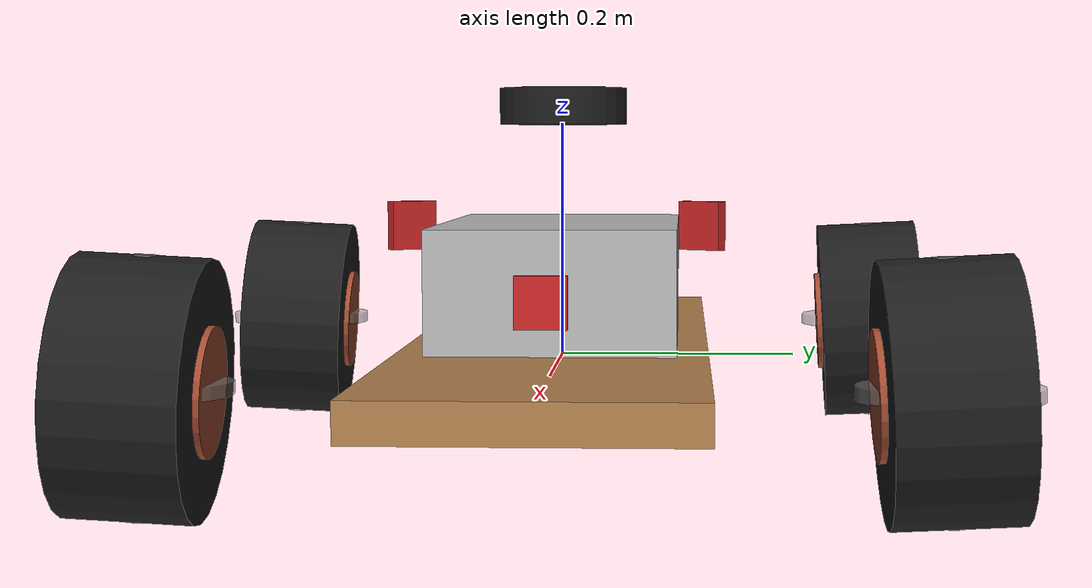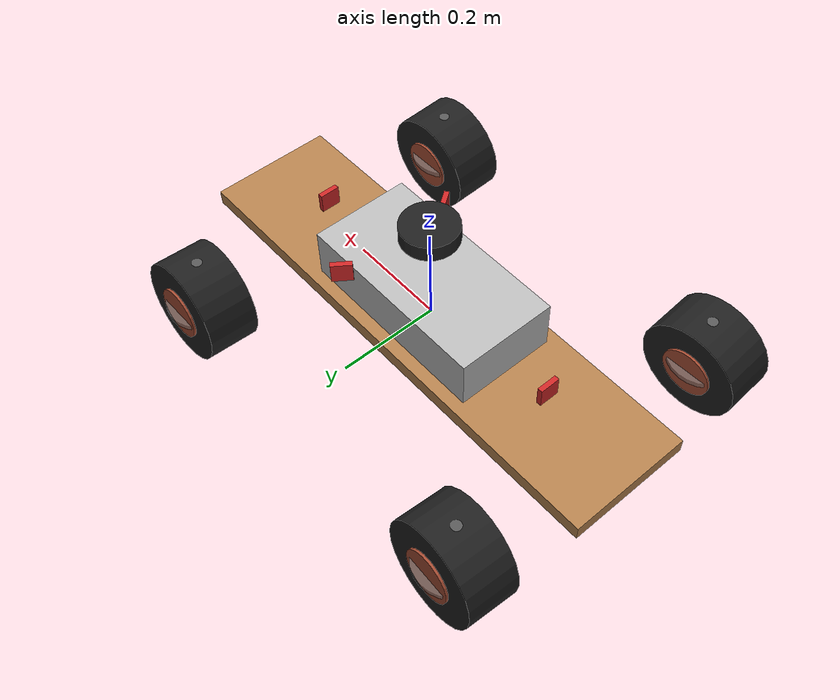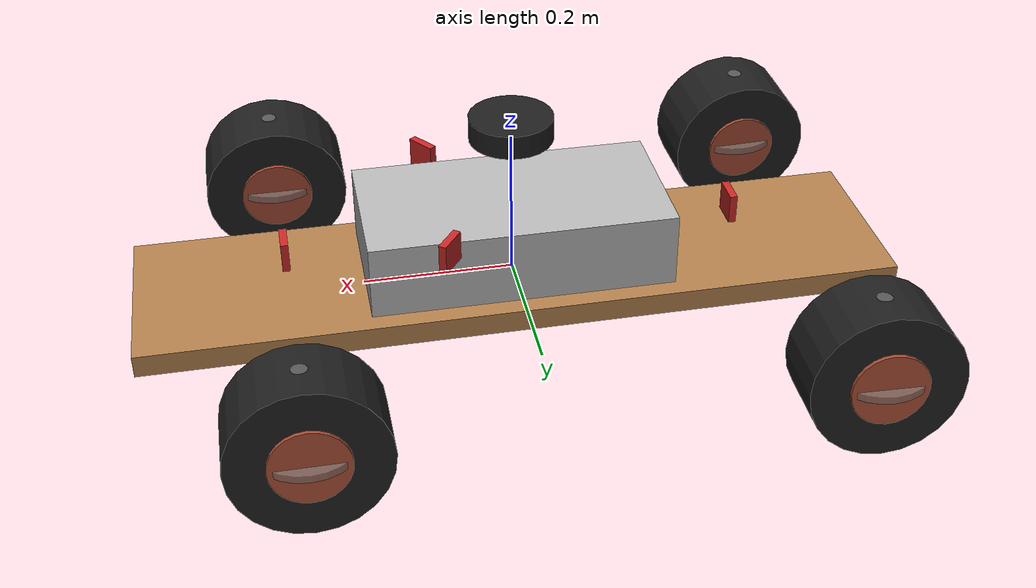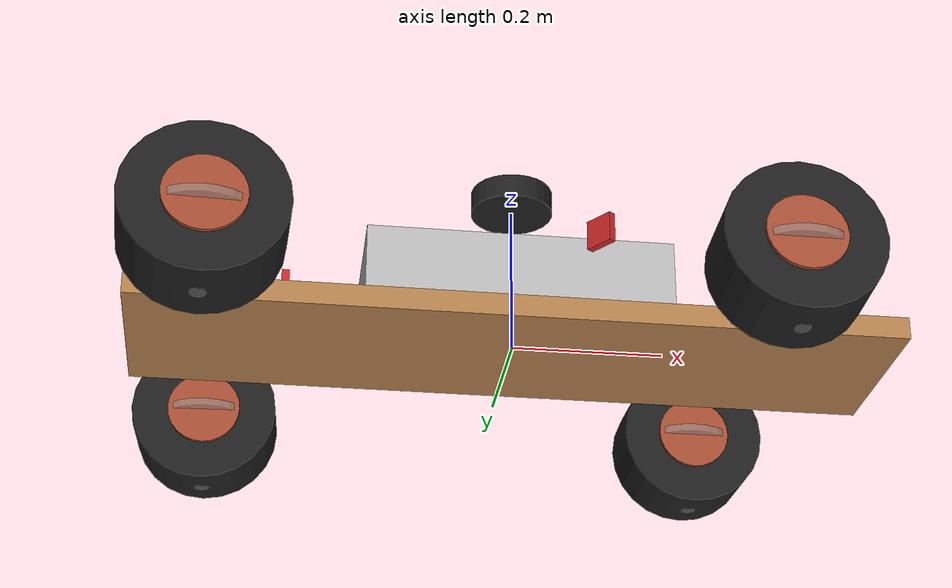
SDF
<sdf version='1.7'>
  <model name='dorothy'>
    <link name='base_footprint'>
      <inertial>
        <pose>-0 -4e-06 0.043589 0 -0 0</pose>
        <mass>0.794</mass>
        <inertia>
          <ixx>0.0135955</ixx>
          <ixy>2.72662e-06</ixy>
          <ixz>-0.00023</ixz>
          <iyy>0.05577</iyy>
          <iyz>2.27465e-07</iyz>
          <izz>0.0551922</izz>
        </inertia>
      </inertial>
      <collision name='base_footprint_fixed_joint_lump__body_link_collision'>
        <pose>0 0 0 0 -0 0</pose>
        <geometry>
          <box>
            <size>1 0.25 0.03</size>
          </box>
        </geometry>
        <surface>
          <contact>
            <ode/>
          </contact>
          <friction>
            <ode/>
          </friction>
        </surface>
      </collision>
      <collision name='base_footprint_fixed_joint_lump__pod_collision_1'>
        <pose>0 0 0.065 0 -0 3.14</pose>
        <geometry>
          <box>
            <size>0.4 0.2 0.1</size>
          </box>
        </geometry>
      </collision>
      <collision name='base_footprint_fixed_joint_lump__camera_front_collision_2'>
        <pose>-0.3 0.000478 0.065 0 -0 3.14</pose>
        <geometry>
          <box>
            <size>0.01 0.04 0.04</size>
          </box>
        </geometry>
        <surface>
          <contact>
            <ode/>
          </contact>
          <friction>
            <ode/>
          </friction>
        </surface>
      </collision>
      <collision name='base_footprint_fixed_joint_lump__camera_left_collision_3'>
        <pose>0.099809 -0.120159 0.115 0 0 -2.51487</pose>
        <geometry>
          <box>
            <size>0.01 0.04 0.04</size>
          </box>
        </geometry>
        <surface>
          <contact>
            <ode/>
          </contact>
          <friction>
            <ode/>
          </friction>
        </surface>
      </collision>
      <collision name='base_footprint_fixed_joint_lump__camera_rear_collision_4'>
        <pose>0.3 -0.000478 0.065 0 0 -0.001595</pose>
        <geometry>
          <box>
            <size>0.01 0.04 0.04</size>
          </box>
        </geometry>
        <surface>
          <contact>
            <ode/>
          </contact>
          <friction>
            <ode/>
          </friction>
        </surface>
      </collision>
      <collision name='base_footprint_fixed_joint_lump__camera_right_collision_5'>
        <pose>0.100191 0.119841 0.115 0 -0 2.51168</pose>
        <geometry>
          <box>
            <size>0.01 0.04 0.04</size>
          </box>
        </geometry>
        <surface>
          <contact>
            <ode/>
          </contact>
          <friction>
            <ode/>
          </friction>
        </surface>
      </collision>
      <collision name='base_footprint_fixed_joint_lump__laser_collision_6'>
        <pose>0.015 -4.8e-05 0.2085 0 0 -0.003185</pose>
        <geometry>
          <cylinder>
            <length>0.0315</length>
            <radius>0.055</radius>
          </cylinder>
        </geometry>
        <surface>
          <contact>
            <ode/>
          </contact>
          <friction>
            <ode/>
          </friction>
        </surface>
      </collision>
      <visual name='base_footprint_fixed_joint_lump__body_link_visual'>
        <pose>0 0 0 0 -0 0</pose>
        <geometry>
          <box>
            <size>1 0.25 0.03</size>
          </box>
        </geometry>
        <material>
          <script>
            <name>Gazebo/Wood</name>
            <uri>file://media/materials/scripts/gazebo.material</uri>
          </script>
        </material>
      </visual>
      <visual name='base_footprint_fixed_joint_lump__left_back_strut_base_link_visual_1'>
        <pose>-0.4 0.3 0 0 -0 1.57079</pose>
        <geometry>
          <cylinder>
            <length>0.01</length>
            <radius>0.07</radius>
          </cylinder>
        </geometry>
        <material>
          <script>
            <name>Gazebo/GreyTransparent</name>
            <uri>file://media/materials/scripts/gazebo.material</uri>
          </script>
        </material>
      </visual>
      <visual name='base_footprint_fixed_joint_lump__left_front_strut_base_link_visual_2'>
        <pose>0.3 0.3 0 0 -0 1.57079</pose>
        <geometry>
          <cylinder>
            <length>0.01</length>
            <radius>0.07</radius>
          </cylinder>
        </geometry>
        <material>
          <script>
            <name>Gazebo/GreyTransparent</name>
            <uri>file://media/materials/scripts/gazebo.material</uri>
          </script>
        </material>
      </visual>
      <visual name='base_footprint_fixed_joint_lump__pod_visual_3'>
        <pose>0 0 0.065 0 -0 3.14</pose>
        <geometry>
          <box>
            <size>0.4 0.2 0.1</size>
          </box>
        </geometry>
      </visual>
      <visual name='base_footprint_fixed_joint_lump__camera_front_visual_4'>
        <pose>-0.3 0.000478 0.065 0 -0 3.14</pose>
        <geometry>
          <box>
            <size>0.01 0.04 0.04</size>
          </box>
        </geometry>
        <material>
          <script>
            <name>Gazebo/Red</name>
            <uri>file://media/materials/scripts/gazebo.material</uri>
          </script>
        </material>
      </visual>
      <visual name='base_footprint_fixed_joint_lump__camera_left_visual_5'>
        <pose>0.099809 -0.120159 0.115 0 0 -2.51487</pose>
        <geometry>
          <box>
            <size>0.01 0.04 0.04</size>
          </box>
        </geometry>
        <material>
          <script>
            <name>Gazebo/Red</name>
            <uri>file://media/materials/scripts/gazebo.material</uri>
          </script>
        </material>
      </visual>
      <visual name='base_footprint_fixed_joint_lump__camera_rear_visual_6'>
        <pose>0.3 -0.000478 0.065 0 0 -0.001595</pose>
        <geometry>
          <box>
            <size>0.01 0.04 0.04</size>
          </box>
        </geometry>
        <material>
          <script>
            <name>Gazebo/Red</name>
            <uri>file://media/materials/scripts/gazebo.material</uri>
          </script>
        </material>
      </visual>
      <visual name='base_footprint_fixed_joint_lump__camera_right_visual_7'>
        <pose>0.100191 0.119841 0.115 0 -0 2.51168</pose>
        <geometry>
          <box>
            <size>0.01 0.04 0.04</size>
          </box>
        </geometry>
        <material>
          <script>
            <name>Gazebo/Red</name>
            <uri>file://media/materials/scripts/gazebo.material</uri>
          </script>
        </material>
      </visual>
      <visual name='base_footprint_fixed_joint_lump__laser_visual_8'>
        <pose>0 0 0.215 0 0 -0.003185</pose>
        <geometry>
          <cylinder>
            <length>0.0315</length>
            <radius>0.055</radius>
          </cylinder>
        </geometry>
        <material>
          <script>
            <name>Gazebo/FlatBlack</name>
            <uri>file://media/materials/scripts/gazebo.material</uri>
          </script>
        </material>
      </visual>
      <visual name='base_footprint_fixed_joint_lump__right_back_strut_base_link_visual_9'>
        <pose>-0.4 -0.3 0 0 -0 1.57079</pose>
        <geometry>
          <cylinder>
            <length>0.01</length>
            <radius>0.07</radius>
          </cylinder>
        </geometry>
        <material>
          <script>
            <name>Gazebo/GreyTransparent</name>
            <uri>file://media/materials/scripts/gazebo.material</uri>
          </script>
        </material>
      </visual>
      <visual name='base_footprint_fixed_joint_lump__right_front_strut_base_link_visual_10'>
        <pose>0.3 -0.3 0 0 -0 1.57079</pose>
        <geometry>
          <cylinder>
            <length>0.01</length>
            <radius>0.07</radius>
          </cylinder>
        </geometry>
        <material>
          <script>
            <name>Gazebo/GreyTransparent</name>
            <uri>file://media/materials/scripts/gazebo.material</uri>
          </script>
        </material>
      </visual>
      <sensor name='imu_sensor' type='imu'>
        <always_on>1</always_on>
        <update_rate>1000</update_rate>
        <pose>0 0 0 0 -0 0</pose>
        <gravity>1</gravity>
      </sensor>
      <sensor name='camera_front_sensor' type='camera'>
        <camera>
          <horizontal_fov>1.5</horizontal_fov>
          <image>
            <width>640</width>
            <height>480</height>
          </image>
          <clip>
            <near>0.1</near>
            <far>1000</far>
          </clip>
        </camera>
        <always_on>1</always_on>
        <update_rate>10</update_rate>
        <visualize>0</visualize>
        <camera name='camera_front'>
          <distortion>
            <k1>0</k1>
            <k2>0</k2>
            <k3>0</k3>
            <p1>0</p1>
            <p2>0</p2>
            <center>0.5 0.5</center>
          </distortion>
          <horizontal_fov>1.047</horizontal_fov>
          <image>
            <width>320</width>
            <height>240</height>
          </image>
          <clip>
            <near>0.1</near>
            <far>100</far>
          </clip>
        </camera>
        <plugin name='camera_controller' filename='libgazebo_ros_camera.so'>
          <ros>
            <namespace/>
          </ros>
          <hack_baseline>0.07</hack_baseline>
          <frame_name>camera_front</frame_name>
        </plugin>
        <pose>-0.3 0.000478 0.065 0 -0 3.14</pose>
      </sensor>
      <sensor name='camera_left_sensor' type='camera'>
        <camera>
          <horizontal_fov>1.5</horizontal_fov>
          <image>
            <width>640</width>
            <height>480</height>
          </image>
          <clip>
            <near>0.1</near>
            <far>1000</far>
          </clip>
        </camera>
        <always_on>1</always_on>
        <update_rate>10</update_rate>
        <visualize>0</visualize>
        <camera name='camera_left'>
          <distortion>
            <k1>0</k1>
            <k2>0</k2>
            <k3>0</k3>
            <p1>0</p1>
            <p2>0</p2>
            <center>0.5 0.5</center>
          </distortion>
          <horizontal_fov>1.047</horizontal_fov>
          <image>
            <width>320</width>
            <height>240</height>
          </image>
          <clip>
            <near>0.1</near>
            <far>100</far>
          </clip>
        </camera>
        <plugin name='camera_controller' filename='libgazebo_ros_camera.so'>
          <ros>
            <namespace/>
          </ros>
          <hack_baseline>0.07</hack_baseline>
          <frame_name>camera_left</frame_name>
        </plugin>
        <pose>0.099809 -0.120159 0.115 0 -0 -2.51487</pose>
      </sensor>
      <sensor name='camera_rear_sensor' type='camera'>
        <camera>
          <horizontal_fov>1.5</horizontal_fov>
          <image>
            <width>640</width>
            <height>480</height>
          </image>
          <clip>
            <near>0.1</near>
            <far>1000</far>
          </clip>
        </camera>
        <always_on>1</always_on>
        <update_rate>10</update_rate>
        <visualize>0</visualize>
        <camera name='camera_rear'>
          <distortion>
            <k1>0</k1>
            <k2>0</k2>
            <k3>0</k3>
            <p1>0</p1>
            <p2>0</p2>
            <center>0.5 0.5</center>
          </distortion>
          <horizontal_fov>1.047</horizontal_fov>
          <image>
            <width>320</width>
            <height>240</height>
          </image>
          <clip>
            <near>0.1</near>
            <far>100</far>
          </clip>
        </camera>
        <plugin name='camera_controller' filename='libgazebo_ros_camera.so'>
          <ros>
            <namespace/>
          </ros>
          <hack_baseline>0.07</hack_baseline>
          <frame_name>camera_rear</frame_name>
        </plugin>
        <pose>0.3 -0.000478 0.065 0 -0 -0.001595</pose>
      </sensor>
      <sensor name='camera_right_sensor' type='camera'>
        <camera>
          <horizontal_fov>1.5</horizontal_fov>
          <image>
            <width>640</width>
            <height>480</height>
          </image>
          <clip>
            <near>0.1</near>
            <far>1000</far>
          </clip>
        </camera>
        <always_on>1</always_on>
        <update_rate>10</update_rate>
        <visualize>0</visualize>
        <camera name='camera_right'>
          <distortion>
            <k1>0</k1>
            <k2>0</k2>
            <k3>0</k3>
            <p1>0</p1>
            <p2>0</p2>
            <center>0.5 0.5</center>
          </distortion>
          <horizontal_fov>1.047</horizontal_fov>
          <image>
            <width>320</width>
            <height>240</height>
          </image>
          <clip>
            <near>0.1</near>
            <far>100</far>
          </clip>
        </camera>
        <plugin name='camera_controller' filename='libgazebo_ros_camera.so'>
          <ros>
            <namespace/>
          </ros>
          <hack_baseline>0.07</hack_baseline>
          <frame_name>camera_right</frame_name>
        </plugin>
        <pose>0.100191 0.119841 0.115 0 -0 2.51168</pose>
      </sensor>
      <sensor name='lidar_sensor' type='ray'>
        <visualize>0</visualize>
        <update_rate>15</update_rate>
        <ray>
          <scan>
            <horizontal>
              <samples>360</samples>
              <resolution>1</resolution>
              <min_angle>0</min_angle>
              <max_angle>6.28319</max_angle>
            </horizontal>
          </scan>
          <range>
            <min>0.12</min>
            <max>10</max>
            <resolution>0.05</resolution>
          </range>
          <noise>
            <type>gaussian</type>
            <mean>0</mean>
            <stddev>0.01</stddev>
          </noise>
        </ray>
        <plugin name='scan' filename='libgazebo_ros_ray_sensor.so'>
          <ros>
            <remapping>~/out:=scan</remapping>
          </ros>
          <output_type>sensor_msgs/LaserScan</output_type>
          <frame_name>laser</frame_name>
        </plugin>
        <pose>0 0 0.215 0 -0 -0.003185</pose>
      </sensor>
    </link>
    <joint name='left_back_strut_base_to_strut' type='prismatic'>
      <pose relative_to='base_footprint'>-0.4 0.3 0 0 -0.05236 1.52716</pose>
      <parent>base_footprint</parent>
      <child>left_back_strut_link</child>
      <axis>
        <xyz>0 0 1</xyz>
        <limit>
          <lower>-0.05</lower>
          <upper>0.05</upper>
          <effort>1</effort>
          <velocity>1</velocity>
        </limit>
        <dynamics>
          <damping>5</damping>
          <friction>0</friction>
          <spring_reference>-0.07</spring_reference>
          <spring_stiffness>100</spring_stiffness>
        </dynamics>
      </axis>
      <physics>
        <ode>
          <implicit_spring_damper>1</implicit_spring_damper>
          <cfm_damping>1</cfm_damping>
          <limit>
            <cfm>0</cfm>
            <erp>0.2</erp>
          </limit>
        </ode>
      </physics>
    </joint>
    <link name='left_back_strut_link'>
      <pose relative_to='left_back_strut_base_to_strut'>0 0 0 0 -0 0</pose>
      <inertial>
        <pose>0 0 0 0 -0 0</pose>
        <mass>0.03</mass>
        <inertia>
          <ixx>0.000116667</ixx>
          <ixy>0</ixy>
          <ixz>1.02054e-21</ixz>
          <iyy>0.0001</iyy>
          <iyz>0</iyz>
          <izz>0.000133333</izz>
        </inertia>
      </inertial>
      <visual name='left_back_strut_link_visual'>
        <pose>0 0 0 0 -0 0</pose>
        <geometry>
          <cylinder>
            <length>0.2</length>
            <radius>0.01</radius>
          </cylinder>
        </geometry>
        <material>
          <script>
            <name>Gazebo/GreyTransparent</name>
            <uri>file://media/materials/scripts/gazebo.material</uri>
          </script>
        </material>
      </visual>
      <visual name='left_back_strut_link_fixed_joint_lump__left_back_hub_link_visual_1'>
        <pose>0 0 0 0 1.5708 0</pose>
        <geometry>
          <cylinder>
            <length>0.11</length>
            <radius>0.05</radius>
          </cylinder>
        </geometry>
        <material>
          <script>
            <name>Gazebo/Bricks</name>
            <uri>file://media/materials/scripts/gazebo.material</uri>
          </script>
        </material>
      </visual>
    </link>
    <joint name='left_back_hub_to_wheel' type='revolute'>
      <pose relative_to='left_back_strut_link'>0 0 0 0 1.57079 0</pose>
      <parent>left_back_strut_link</parent>
      <child>left_back_wheel_link</child>
      <axis>
        <xyz>0 0 1</xyz>
        <limit>
          <lower>-1e+16</lower>
          <upper>1e+16</upper>
        </limit>
        <dynamics>
          <damping>0.001</damping>
          <friction>0.0001</friction>
          <spring_reference>0</spring_reference>
          <spring_stiffness>0</spring_stiffness>
        </dynamics>
      </axis>
    </joint>
    <link name='left_back_wheel_link'>
      <pose relative_to='left_back_hub_to_wheel'>0 0 0 0 -0 0</pose>
      <inertial>
        <pose>0 0 0 0 -0 0</pose>
        <mass>0.1</mass>
        <inertia>
          <ixx>0.000333333</ixx>
          <ixy>0</ixy>
          <ixz>0</ixz>
          <iyy>0.000333333</iyy>
          <iyz>0</iyz>
          <izz>0.0005</izz>
        </inertia>
      </inertial>
      <collision name='left_back_wheel_link_collision'>
        <pose>0 0 0 0 -0 0</pose>
        <geometry>
          <cylinder>
            <length>0.1</length>
            <radius>0.1</radius>
          </cylinder>
        </geometry>
        <surface>
          <contact>
            <ode/>
          </contact>
          <friction>
            <ode>
              <mu>1</mu>
              <mu2>1</mu2>
              <fdir1>0 0 1</fdir1>
            </ode>
          </friction>
        </surface>
      </collision>
      <visual name='left_back_wheel_link_visual'>
        <pose>0 0 0 0 -0 0</pose>
        <geometry>
          <cylinder>
            <length>0.1</length>
            <radius>0.1</radius>
          </cylinder>
        </geometry>
        <material>
          <script>
            <name>Gazebo/Black</name>
            <uri>file://media/materials/scripts/gazebo.material</uri>
          </script>
        </material>
      </visual>
      <slip1>100.0</slip1>
    </link>
    <joint name='left_front_strut_base_to_strut' type='prismatic'>
      <pose relative_to='base_footprint'>0.3 0.3 0 0 -0.05236 1.57079</pose>
      <parent>base_footprint</parent>
      <child>left_front_strut_link</child>
      <axis>
        <xyz>0 0 1</xyz>
        <limit>
          <lower>-0.05</lower>
          <upper>0.05</upper>
          <effort>1</effort>
          <velocity>1</velocity>
        </limit>
        <dynamics>
          <damping>5</damping>
          <friction>0</friction>
          <spring_reference>-0.07</spring_reference>
          <spring_stiffness>100</spring_stiffness>
        </dynamics>
      </axis>
      <physics>
        <ode>
          <implicit_spring_damper>1</implicit_spring_damper>
          <cfm_damping>1</cfm_damping>
          <limit>
            <cfm>0</cfm>
            <erp>0.2</erp>
          </limit>
        </ode>
      </physics>
    </joint>
    <link name='left_front_strut_link'>
      <pose relative_to='left_front_strut_base_to_strut'>0 0 0 0 -0 0</pose>
      <inertial>
        <pose>0 0 0 0 -0 0</pose>
        <mass>0.01</mass>
        <inertia>
          <ixx>3.33333e-05</ixx>
          <ixy>0</ixy>
          <ixz>0</ixz>
          <iyy>3.33333e-05</iyy>
          <iyz>0</iyz>
          <izz>5e-05</izz>
        </inertia>
      </inertial>
      <visual name='left_front_strut_link_visual'>
        <pose>0 0 0 0 -0 0</pose>
        <geometry>
          <cylinder>
            <length>0.2</length>
            <radius>0.01</radius>
          </cylinder>
        </geometry>
        <material>
          <script>
            <name>Gazebo/GreyTransparent</name>
            <uri>file://media/materials/scripts/gazebo.material</uri>
          </script>
        </material>
      </visual>
    </link>
    <joint name='left_front_strut_to_strut_dummy' type='revolute'>
      <pose relative_to='left_front_strut_link'>0 0 0 0 -0 0</pose>
      <parent>left_front_strut_link</parent>
      <child>left_front_strut_dummy_link</child>
      <axis>
        <xyz>0 0 -1</xyz>
        <limit>
          <lower>-1.0472</lower>
          <upper>1.0472</upper>
          <effort>100</effort>
          <velocity>1</velocity>
        </limit>
        <dynamics>
          <damping>0</damping>
          <friction>0</friction>
          <spring_reference>0</spring_reference>
          <spring_stiffness>0</spring_stiffness>
        </dynamics>
      </axis>
      <physics>
        <ode>
          <limit>
            <cfm>0</cfm>
            <erp>0.2</erp>
          </limit>
        </ode>
      </physics>
      <empty/>
    </joint>
    <link name='left_front_strut_dummy_link'>
      <pose relative_to='left_front_strut_to_strut_dummy'>0 0 0 0 -0 0</pose>
      <inertial>
        <pose>0 0 0 0 -0 0</pose>
        <mass>0.02</mass>
        <inertia>
          <ixx>8.33333e-05</ixx>
          <ixy>0</ixy>
          <ixz>1.02054e-21</ixz>
          <iyy>6.66667e-05</iyy>
          <iyz>0</iyz>
          <izz>8.33333e-05</izz>
        </inertia>
      </inertial>
      <visual name='left_front_strut_dummy_link_fixed_joint_lump__left_front_hub_link_visual'>
        <pose>0 0 0 0 1.5708 0</pose>
        <geometry>
          <cylinder>
            <length>0.11</length>
            <radius>0.05</radius>
          </cylinder>
        </geometry>
        <material>
          <script>
            <name>Gazebo/Bricks</name>
            <uri>file://media/materials/scripts/gazebo.material</uri>
          </script>
        </material>
      </visual>
    </link>
    <joint name='left_front_hub_to_wheel' type='revolute'>
      <pose relative_to='left_front_strut_dummy_link'>0 0 0 0 1.57079 0</pose>
      <parent>left_front_strut_dummy_link</parent>
      <child>left_front_wheel_link</child>
      <axis>
        <xyz>0 0 1</xyz>
        <limit>
          <lower>-1e+16</lower>
          <upper>1e+16</upper>
        </limit>
        <dynamics>
          <damping>0.001</damping>
          <friction>0.0001</friction>
          <spring_reference>0</spring_reference>
          <spring_stiffness>0</spring_stiffness>
        </dynamics>
      </axis>
    </joint>
    <link name='left_front_wheel_link'>
      <pose relative_to='left_front_hub_to_wheel'>0 0 0 0 -0 0</pose>
      <inertial>
        <pose>0 0 0 0 -0 0</pose>
        <mass>0.1</mass>
        <inertia>
          <ixx>0.000333333</ixx>
          <ixy>0</ixy>
          <ixz>0</ixz>
          <iyy>0.000333333</iyy>
          <iyz>0</iyz>
          <izz>0.0005</izz>
        </inertia>
      </inertial>
      <collision name='left_front_wheel_link_collision'>
        <pose>0 0 0 0 -0 0</pose>
        <geometry>
          <cylinder>
            <length>0.1</length>
            <radius>0.1</radius>
          </cylinder>
        </geometry>
        <surface>
          <contact>
            <ode/>
          </contact>
          <friction>
            <ode>
              <mu>1</mu>
              <mu2>1</mu2>
              <fdir1>0 0 1</fdir1>
            </ode>
          </friction>
        </surface>
      </collision>
      <visual name='left_front_wheel_link_visual'>
        <pose>0 0 0 0 -0 0</pose>
        <geometry>
          <cylinder>
            <length>0.1</length>
            <radius>0.1</radius>
          </cylinder>
        </geometry>
        <material>
          <script>
            <name>Gazebo/Black</name>
            <uri>file://media/materials/scripts/gazebo.material</uri>
          </script>
        </material>
      </visual>
      <slip1>100.0</slip1>
    </link>
    <joint name='right_back_strut_base_to_strut' type='prismatic'>
      <pose relative_to='base_footprint'>-0.4 -0.3 0 -0 0.05236 1.61443</pose>
      <parent>base_footprint</parent>
      <child>right_back_strut_link</child>
      <axis>
        <xyz>0 0 1</xyz>
        <limit>
          <lower>-0.05</lower>
          <upper>0.05</upper>
          <effort>1</effort>
          <velocity>1</velocity>
        </limit>
        <dynamics>
          <damping>5</damping>
          <friction>0</friction>
          <spring_reference>-0.07</spring_reference>
          <spring_stiffness>100</spring_stiffness>
        </dynamics>
      </axis>
      <physics>
        <ode>
          <implicit_spring_damper>1</implicit_spring_damper>
          <cfm_damping>1</cfm_damping>
          <limit>
            <cfm>0</cfm>
            <erp>0.2</erp>
          </limit>
        </ode>
      </physics>
    </joint>
    <link name='right_back_strut_link'>
      <pose relative_to='right_back_strut_base_to_strut'>0 0 0 0 -0 0</pose>
      <inertial>
        <pose>0 0 0 0 -0 0</pose>
        <mass>0.03</mass>
        <inertia>
          <ixx>0.000116667</ixx>
          <ixy>0</ixy>
          <ixz>1.02054e-21</ixz>
          <iyy>0.0001</iyy>
          <iyz>0</iyz>
          <izz>0.000133333</izz>
        </inertia>
      </inertial>
      <visual name='right_back_strut_link_visual'>
        <pose>0 0 0 0 -0 0</pose>
        <geometry>
          <cylinder>
            <length>0.2</length>
            <radius>0.01</radius>
          </cylinder>
        </geometry>
        <material>
          <script>
            <name>Gazebo/GreyTransparent</name>
            <uri>file://media/materials/scripts/gazebo.material</uri>
          </script>
        </material>
      </visual>
      <visual name='right_back_strut_link_fixed_joint_lump__right_back_hub_link_visual_1'>
        <pose>0 0 0 0 1.5708 0</pose>
        <geometry>
          <cylinder>
            <length>0.11</length>
            <radius>0.05</radius>
          </cylinder>
        </geometry>
        <material>
          <script>
            <name>Gazebo/Bricks</name>
            <uri>file://media/materials/scripts/gazebo.material</uri>
          </script>
        </material>
      </visual>
    </link>
    <joint name='right_back_hub_to_wheel' type='revolute'>
      <pose relative_to='right_back_strut_link'>0 0 0 0 1.57079 0</pose>
      <parent>right_back_strut_link</parent>
      <child>right_back_wheel_link</child>
      <axis>
        <xyz>0 0 1</xyz>
        <limit>
          <lower>-1e+16</lower>
          <upper>1e+16</upper>
        </limit>
        <dynamics>
          <damping>0.001</damping>
          <friction>0.0001</friction>
          <spring_reference>0</spring_reference>
          <spring_stiffness>0</spring_stiffness>
        </dynamics>
      </axis>
    </joint>
    <link name='right_back_wheel_link'>
      <pose relative_to='right_back_hub_to_wheel'>0 0 0 0 -0 0</pose>
      <inertial>
        <pose>0 0 0 0 -0 0</pose>
        <mass>0.1</mass>
        <inertia>
          <ixx>0.000333333</ixx>
          <ixy>0</ixy>
          <ixz>0</ixz>
          <iyy>0.000333333</iyy>
          <iyz>0</iyz>
          <izz>0.0005</izz>
        </inertia>
      </inertial>
      <collision name='right_back_wheel_link_collision'>
        <pose>0 0 0 0 -0 0</pose>
        <geometry>
          <cylinder>
            <length>0.1</length>
            <radius>0.1</radius>
          </cylinder>
        </geometry>
        <surface>
          <contact>
            <ode/>
          </contact>
          <friction>
            <ode>
              <mu>1</mu>
              <mu2>1</mu2>
              <fdir1>0 0 1</fdir1>
            </ode>
          </friction>
        </surface>
      </collision>
      <visual name='right_back_wheel_link_visual'>
        <pose>0 0 0 0 -0 0</pose>
        <geometry>
          <cylinder>
            <length>0.1</length>
            <radius>0.1</radius>
          </cylinder>
        </geometry>
        <material>
          <script>
            <name>Gazebo/Black</name>
            <uri>file://media/materials/scripts/gazebo.material</uri>
          </script>
        </material>
      </visual>
      <slip1>100.0</slip1>
    </link>
    <joint name='right_front_strut_base_to_strut' type='prismatic'>
      <pose relative_to='base_footprint'>0.3 -0.3 0 -0 0.05236 1.57079</pose>
      <parent>base_footprint</parent>
      <child>right_front_strut_link</child>
      <axis>
        <xyz>0 0 1</xyz>
        <limit>
          <lower>-0.05</lower>
          <upper>0.05</upper>
          <effort>1</effort>
          <velocity>1</velocity>
        </limit>
        <dynamics>
          <damping>5</damping>
          <friction>0</friction>
          <spring_reference>-0.07</spring_reference>
          <spring_stiffness>100</spring_stiffness>
        </dynamics>
      </axis>
      <physics>
        <ode>
          <implicit_spring_damper>1</implicit_spring_damper>
          <cfm_damping>1</cfm_damping>
          <limit>
            <cfm>0</cfm>
            <erp>0.2</erp>
          </limit>
        </ode>
      </physics>
    </joint>
    <link name='right_front_strut_link'>
      <pose relative_to='right_front_strut_base_to_strut'>0 0 0 0 -0 0</pose>
      <inertial>
        <pose>0 0 0 0 -0 0</pose>
        <mass>0.01</mass>
        <inertia>
          <ixx>3.33333e-05</ixx>
          <ixy>0</ixy>
          <ixz>0</ixz>
          <iyy>3.33333e-05</iyy>
          <iyz>0</iyz>
          <izz>5e-05</izz>
        </inertia>
      </inertial>
      <visual name='right_front_strut_link_visual'>
        <pose>0 0 0 0 -0 0</pose>
        <geometry>
          <cylinder>
            <length>0.2</length>
            <radius>0.01</radius>
          </cylinder>
        </geometry>
        <material>
          <script>
            <name>Gazebo/GreyTransparent</name>
            <uri>file://media/materials/scripts/gazebo.material</uri>
          </script>
        </material>
      </visual>
    </link>
    <joint name='right_front_strut_to_strut_dummy' type='revolute'>
      <pose relative_to='right_front_strut_link'>0 0 0 0 -0 0</pose>
      <parent>right_front_strut_link</parent>
      <child>right_front_strut_dummy_link</child>
      <axis>
        <xyz>0 0 -1</xyz>
        <limit>
          <lower>-1.0472</lower>
          <upper>1.0472</upper>
          <effort>100</effort>
          <velocity>1</velocity>
        </limit>
        <dynamics>
          <damping>0</damping>
          <friction>0</friction>
          <spring_reference>0</spring_reference>
          <spring_stiffness>0</spring_stiffness>
        </dynamics>
      </axis>
      <physics>
        <ode>
          <limit>
            <cfm>0</cfm>
            <erp>0.2</erp>
          </limit>
        </ode>
      </physics>
      <empty/>
    </joint>
    <link name='right_front_strut_dummy_link'>
      <pose relative_to='right_front_strut_to_strut_dummy'>0 0 0 0 -0 0</pose>
      <inertial>
        <pose>0 0 0 0 -0 0</pose>
        <mass>0.02</mass>
        <inertia>
          <ixx>8.33333e-05</ixx>
          <ixy>0</ixy>
          <ixz>1.02054e-21</ixz>
          <iyy>6.66667e-05</iyy>
          <iyz>0</iyz>
          <izz>8.33333e-05</izz>
        </inertia>
      </inertial>
      <visual name='right_front_strut_dummy_link_fixed_joint_lump__right_front_hub_link_visual'>
        <pose>0 0 0 0 1.5708 0</pose>
        <geometry>
          <cylinder>
            <length>0.11</length>
            <radius>0.05</radius>
          </cylinder>
        </geometry>
        <material>
          <script>
            <name>Gazebo/Bricks</name>
            <uri>file://media/materials/scripts/gazebo.material</uri>
          </script>
        </material>
      </visual>
    </link>
    <joint name='right_front_hub_to_wheel' type='revolute'>
      <pose relative_to='right_front_strut_dummy_link'>0 0 0 0 1.57079 0</pose>
      <parent>right_front_strut_dummy_link</parent>
      <child>right_front_wheel_link</child>
      <axis>
        <xyz>0 0 1</xyz>
        <limit>
          <lower>-1e+16</lower>
          <upper>1e+16</upper>
        </limit>
        <dynamics>
          <damping>0.001</damping>
          <friction>0.0001</friction>
          <spring_reference>0</spring_reference>
          <spring_stiffness>0</spring_stiffness>
        </dynamics>
      </axis>
    </joint>
    <link name='right_front_wheel_link'>
      <pose relative_to='right_front_hub_to_wheel'>0 0 0 0 -0 0</pose>
      <inertial>
        <pose>0 0 0 0 -0 0</pose>
        <mass>0.1</mass>
        <inertia>
          <ixx>0.000333333</ixx>
          <ixy>0</ixy>
          <ixz>0</ixz>
          <iyy>0.000333333</iyy>
          <iyz>0</iyz>
          <izz>0.0005</izz>
        </inertia>
      </inertial>
      <collision name='right_front_wheel_link_collision'>
        <pose>0 0 0 0 -0 0</pose>
        <geometry>
          <cylinder>
            <length>0.1</length>
            <radius>0.1</radius>
          </cylinder>
        </geometry>
        <surface>
          <contact>
            <ode/>
          </contact>
          <friction>
            <ode>
              <mu>1</mu>
              <mu2>1</mu2>
              <fdir1>0 0 1</fdir1>
            </ode>
          </friction>
        </surface>
      </collision>
      <visual name='right_front_wheel_link_visual'>
        <pose>0 0 0 0 -0 0</pose>
        <geometry>
          <cylinder>
            <length>0.1</length>
            <radius>0.1</radius>
          </cylinder>
        </geometry>
        <material>
          <script>
            <name>Gazebo/Black</name>
            <uri>file://media/materials/scripts/gazebo.material</uri>
          </script>
        </material>
      </visual>
      <slip1>100.0</slip1>
    </link>
    <static>0</static>
    <plugin name='ArduCopter_Plugin' filename='libArduPilotPlugin.so'>
      <fdm_addr>127.0.0.1</fdm_addr>
      <fdm_port_in>9002</fdm_port_in>
      <fdm_port_out>9003</fdm_port_out>
      <modelXYZToAirplaneXForwardZDown>0 0 0 3.14159 0 0</modelXYZToAirplaneXForwardZDown>
      <gazeboXYZToNED>0 0 0 3.14159 0 0</gazeboXYZToNED>
      <imuName>imu_sensor</imuName>
      <connectionTimeoutMaxCount>5</connectionTimeoutMaxCount>
      <control channel='2'>
        <type>VELOCITY</type>
        <offset>-0.5</offset>
        <p_gain>10</p_gain>
        <jointName>left_back_hub_to_wheel</jointName>
        <multiplier>150</multiplier>
      </control>
      <control channel='2'>
        <type>VELOCITY</type>
        <offset>-0.5</offset>
        <p_gain>10</p_gain>
        <jointName>left_front_hub_to_wheel</jointName>
        <multiplier>150</multiplier>
      </control>
      <control channel='2'>
        <type>VELOCITY</type>
        <offset>-0.5</offset>
        <p_gain>10</p_gain>
        <jointName>right_back_hub_to_wheel</jointName>
        <multiplier>150</multiplier>
      </control>
      <control channel='2'>
        <type>VELOCITY</type>
        <offset>-0.5</offset>
        <p_gain>10</p_gain>
        <jointName>right_front_hub_to_wheel</jointName>
        <multiplier>150</multiplier>
      </control>
      <control channel='0'>
        <type>POSITION</type>
        <offset>-0.5</offset>
        <p_gain>30</p_gain>
        <cmd_max>100</cmd_max>
        <cmd_min>-100</cmd_min>
        <jointName>left_front_strut_to_strut_dummy</jointName>
        <multiplier>1.570795</multiplier>
      </control>
      <control channel='0'>
        <type>POSITION</type>
        <offset>-0.5</offset>
        <p_gain>30</p_gain>
        <cmd_max>100</cmd_max>
        <cmd_min>-100</cmd_min>
        <jointName>right_front_strut_to_strut_dummy</jointName>
        <multiplier>1.570795</multiplier>
      </control>
    </plugin>
  </model>
</sdf>
